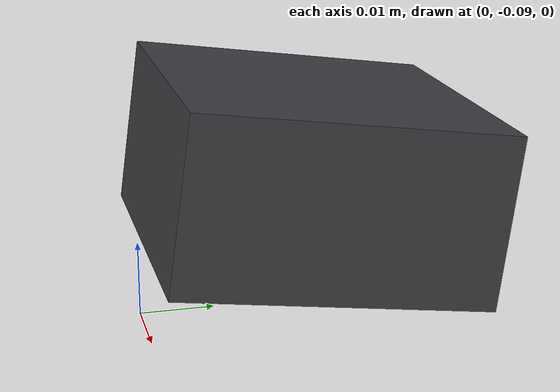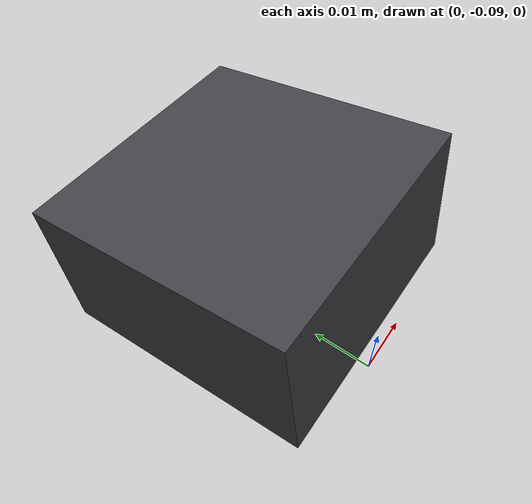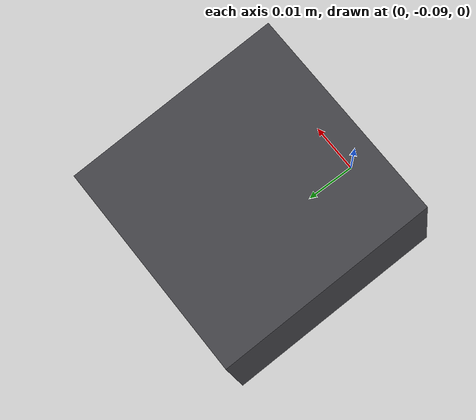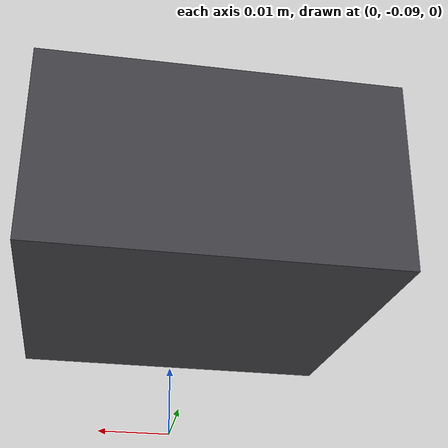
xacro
<?xml version="1.0"?>
<robot xmlns:xacro="http://www.ros.org/wiki/xacro" name="d405">
  <xacro:arg name="prefix" default=""/>
  <!-- tool0 -> camera_link extrinsic (override with the hand-eye result). -->
  <xacro:arg name="cam_xyz" default="0 -0.067 0.01847"/>
  <xacro:arg name="cam_rpy" default="0 -1.4311700 1.5707963"/>

  <xacro:include filename="$(find ur_bringup)/urdf/ur16e_2f85_d405/realsense_d405_macro.xacro"/>

  <!-- Reference frame: the arm's tool0 (published by the UR driver's RSP). -->
  <link name="$(arg prefix)tool0"/>

  <xacro:realsense_d405 prefix="$(arg prefix)" parent="$(arg prefix)tool0" collision="false">
    <origin xyz="$(arg cam_xyz)" rpy="$(arg cam_rpy)"/>
  </xacro:realsense_d405>
</robot>

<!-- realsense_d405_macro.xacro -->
<robot xmlns:xacro="http://www.ros.org/wiki/xacro">
  <xacro:macro name="realsense_d405" params="prefix parent *origin collision:=false">

    <material name="${prefix}d405_alu"><color rgba="0.25 0.25 0.27 1.0"/></material>

    <!-- mount: parent (e.g. tool0) -> camera_link via the given *origin block -->
    <joint name="${prefix}camera_mount_joint" type="fixed">
      <parent link="${parent}"/>
      <child link="${prefix}camera_link"/>
      <xacro:insert_block name="origin"/>
    </joint>

    <!-- D405 body: ~42 x 42 x 23 mm. Visual always; collision only if requested. -->
    <link name="${prefix}camera_link">
      <visual>
        <origin xyz="0 0 0" rpy="0 0 0"/>
        <geometry><box size="0.023 0.042 0.042"/></geometry>
        <material name="${prefix}d405_alu"/>
      </visual>
      <xacro:if value="${collision}">
        <collision>
          <origin xyz="0 0 0" rpy="0 0 0"/>
          <geometry><box size="0.023 0.042 0.042"/></geometry>
        </collision>
      </xacro:if>
      <inertial>
        <mass value="0.05"/>
        <inertia ixx="1e-5" ixy="0" ixz="0" iyy="1e-5" iyz="0" izz="1e-5"/>
      </inertial>
    </link>

    <!-- depth module body frame + optical frame -->
    <joint name="${prefix}camera_depth_joint" type="fixed">
      <parent link="${prefix}camera_link"/>
      <child link="${prefix}camera_depth_frame"/>
      <origin xyz="0.0115 0 0" rpy="0 0 0"/>
    </joint>
    <link name="${prefix}camera_depth_frame"/>
    <joint name="${prefix}camera_depth_optical_joint" type="fixed">
      <parent link="${prefix}camera_depth_frame"/>
      <child link="${prefix}camera_depth_optical_frame"/>
      <!-- body (x fwd, z up) -> optical (z fwd, x right, y down) -->
      <origin xyz="0 0 0" rpy="${-pi/2} 0 ${-pi/2}"/>
    </joint>
    <link name="${prefix}camera_depth_optical_frame"/>

    <!-- color module body frame + optical frame (D405: ~coincident with depth) -->
    <joint name="${prefix}camera_color_joint" type="fixed">
      <parent link="${prefix}camera_link"/>
      <child link="${prefix}camera_color_frame"/>
      <origin xyz="0.0115 0 0" rpy="0 0 0"/>  <!-- +11.5 mm fwd, see depth joint -->

    </joint>
    <link name="${prefix}camera_color_frame"/>
    <joint name="${prefix}camera_color_optical_joint" type="fixed">
      <parent link="${prefix}camera_color_frame"/>
      <child link="${prefix}camera_color_optical_frame"/>
      <origin xyz="0 0 0" rpy="${-pi/2} 0 ${-pi/2}"/>
    </joint>
    <link name="${prefix}camera_color_optical_frame"/>

  </xacro:macro>
</robot>
